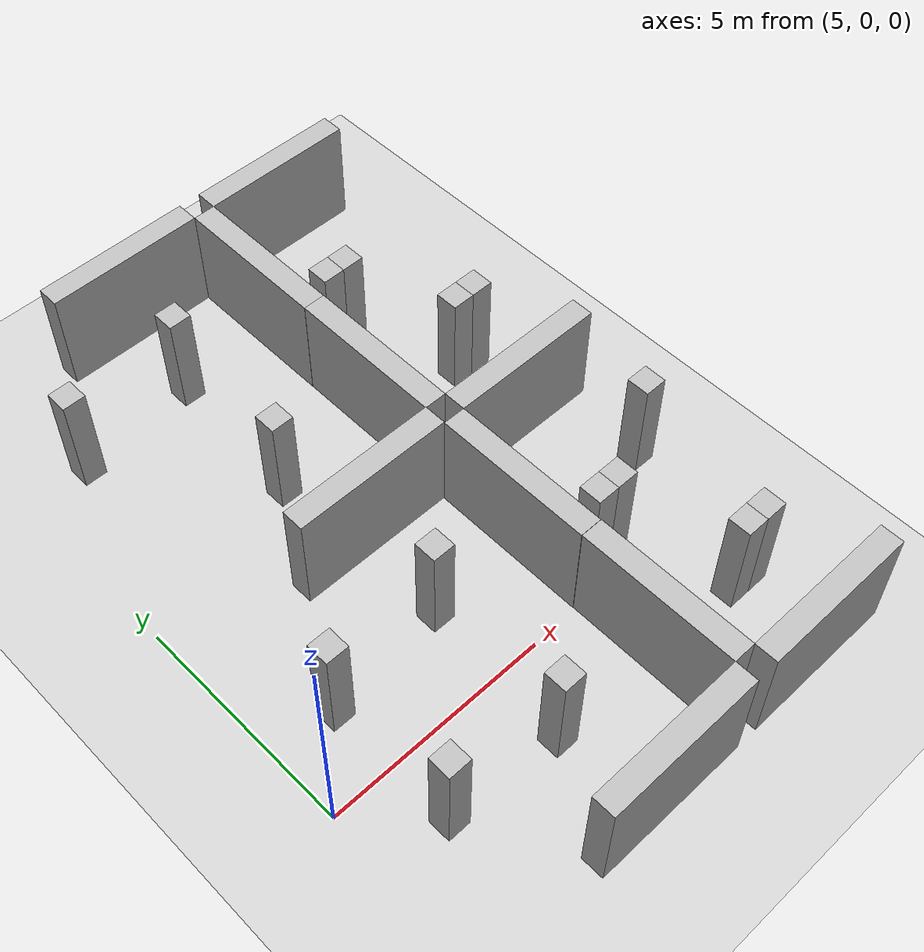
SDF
<sdf version="1.6">
 <world name="default">
  <model name="ground_plane">
   <static>1</static>
   <link name="link">
    <collision name="collision">
     <geometry><plane><normal>0 0 1</normal><size>100 100</size></plane></geometry>
     <surface><friction><ode><mu>100</mu><mu2>50</mu2></ode></friction></surface>
    </collision>
    <visual name="visual">
     <cast_shadows>0</cast_shadows>
     <geometry><plane><normal>0 0 1</normal><size>100 100</size></plane></geometry>
     <material>
      <script><uri>file://media/materials/scripts/gazebo.material</uri><name>Gazebo/Grey</name></script>
     </material>
    </visual>
   </link>
  </model>
  <model name="mywall0_4_clone_0_clone">
   <static>1</static>
   <link name="link">
    <pose>0 0 1.4 0 -0 0</pose>
    <collision name="collision"><geometry><box><size>3.5 0.5 2.4</size></box></geometry></collision>
    <visual name="visual">
     <cast_shadows>0</cast_shadows>
     <geometry><box><size>3.5 0.5 2.4</size></box></geometry>
     <material>
      <script>
       <uri>model://mywall0/materials/scripts</uri>
       <uri>model://mywall0/materials/textures</uri>
       <name>vrc/mywall0</name>
      </script>
     </material>
    </visual>
   </link>
   <pose>11.25 1.75 0 0 -0 1.57</pose>
  </model>
  <model name="mywall0_1_clone_0">
   <static>1</static>
   <link name="link">
    <pose>0 0 1.4 0 -0 0</pose>
    <collision name="collision"><geometry><box><size>3.5 0.5 2.4</size></box></geometry></collision>
    <visual name="visual">
     <cast_shadows>0</cast_shadows>
     <geometry><box><size>3.5 0.5 2.4</size></box></geometry>
     <material>
      <script>
       <uri>model://mywall0/materials/scripts</uri>
       <uri>model://mywall0/materials/textures</uri>
       <name>vrc/mywall0</name>
      </script>
     </material>
    </visual>
   </link>
   <pose>9.26518 3.76712 0 0 -0 0</pose>
  </model>
  <model name="mywall0_4_clone_0_clone_clone">
   <static>1</static>
   <link name="link">
    <pose>0 0 1.4 0 -0 0</pose>
    <collision name="collision"><geometry><box><size>3.5 0.5 2.4</size></box></geometry></collision>
    <visual name="visual">
     <cast_shadows>0</cast_shadows>
     <geometry><box><size>3.5 0.5 2.4</size></box></geometry>
     <material>
      <script>
       <uri>model://mywall0/materials/scripts</uri>
       <uri>model://mywall0/materials/textures</uri>
       <name>vrc/mywall0</name>
      </script>
     </material>
    </visual>
   </link>
   <pose>11.2541 -1.75467 0 0 -0 1.57</pose>
  </model>
  <model name="mywall0_3_clone_0">
   <static>1</static>
   <link name="link">
    <pose>0 0 1.4 0 -0 0</pose>
    <collision name="collision"><geometry><box><size>3.5 0.5 2.4</size></box></geometry></collision>
    <visual name="visual">
     <cast_shadows>0</cast_shadows>
     <geometry><box><size>3.5 0.5 2.4</size></box></geometry>
     <material>
      <script>
       <uri>model://mywall0/materials/scripts</uri>
       <uri>model://mywall0/materials/textures</uri>
       <name>vrc/mywall0</name>
      </script>
     </material>
    </visual>
   </link>
   <pose>9.25625 -3.75 0 0 -0 0</pose>
  </model>
  <model name="mywall0_1_clone_1">
   <static>1</static>
   <link name="link">
    <pose>0 0 1.4 0 -0 0</pose>
    <collision name="collision"><geometry><box><size>3.5 0.5 2.4</size></box></geometry></collision>
    <visual name="visual">
     <cast_shadows>0</cast_shadows>
     <geometry><box><size>3.5 0.5 2.4</size></box></geometry>
     <material>
      <script>
       <uri>model://mywall0/materials/scripts</uri>
       <uri>model://mywall0/materials/textures</uri>
       <name>vrc/mywall0</name>
      </script>
     </material>
    </visual>
   </link>
   <pose>13.25 3.75 0 0 -0 0</pose>
  </model>
  <model name="mywall0_1_clone_1_clone">
   <static>1</static>
   <link name="link">
    <pose>0 0 1.4 0 -0 0</pose>
    <collision name="collision"><geometry><box><size>3.5 0.5 2.4</size></box></geometry></collision>
    <visual name="visual">
     <cast_shadows>0</cast_shadows>
     <geometry><box><size>3.5 0.5 2.4</size></box></geometry>
     <material>
      <script>
       <uri>model://mywall0/materials/scripts</uri>
       <uri>model://mywall0/materials/textures</uri>
       <name>vrc/mywall0</name>
      </script>
     </material>
    </visual>
   </link>
   <pose>13.25 -3.75 0 0 -0 0</pose>
  </model>
  <model name="mywall0_4_clone_0_clone_clone_0_clone_6">
   <static>1</static>
   <link name="link">
    <pose>0 0 1.4 0 -0 0</pose>
    <collision name="collision"><geometry><box><size>3.5 0.5 2.4</size></box></geometry></collision>
    <visual name="visual">
     <cast_shadows>0</cast_shadows>
     <geometry><box><size>3.5 0.5 2.4</size></box></geometry>
     <material>
      <script>
       <uri>model://mywall0/materials/scripts</uri>
       <uri>model://mywall0/materials/textures</uri>
       <name>vrc/mywall0</name>
      </script>
     </material>
    </visual>
   </link>
   <pose>11.25 5.75 0 0 -0 1.57</pose>
  </model>
  <model name="mywall0_4_clone_0_clone_clone_0_clone_7">
   <static>1</static>
   <link name="link">
    <pose>0 0 1.4 0 -0 0</pose>
    <collision name="collision"><geometry><box><size>3.5 0.5 2.4</size></box></geometry></collision>
    <visual name="visual">
     <cast_shadows>0</cast_shadows>
     <geometry><box><size>3.5 0.5 2.4</size></box></geometry>
     <material>
      <script>
       <uri>model://mywall0/materials/scripts</uri>
       <uri>model://mywall0/materials/textures</uri>
       <name>vrc/mywall0</name>
      </script>
     </material>
    </visual>
   </link>
   <pose>11.25 9.25 0 0 -0 1.57</pose>
  </model>
  <model name="mywall0_1_clone_1_clone_3_clone_2">
   <static>1</static>
   <link name="link">
    <pose>0 0 1.4 0 -0 0</pose>
    <collision name="collision"><geometry><box><size>3.5 0.5 2.4</size></box></geometry></collision>
    <visual name="visual">
     <cast_shadows>0</cast_shadows>
     <geometry><box><size>3.5 0.5 2.4</size></box></geometry>
     <material>
      <script>
       <uri>model://mywall0/materials/scripts</uri>
       <uri>model://mywall0/materials/textures</uri>
       <name>vrc/mywall0</name>
      </script>
     </material>
    </visual>
   </link>
   <pose>13.25 11.25 0 0 -0 0</pose>
  </model>
  <model name="mywall0_1_clone_1_clone_3_clone_3">
   <static>1</static>
   <link name="link">
    <pose>0 0 1.4 0 -0 0</pose>
    <collision name="collision"><geometry><box><size>3.5 0.5 2.4</size></box></geometry></collision>
    <visual name="visual">
     <cast_shadows>0</cast_shadows>
     <geometry><box><size>3.5 0.5 2.4</size></box></geometry>
     <material>
      <script>
       <uri>model://mywall0/materials/scripts</uri>
       <uri>model://mywall0/materials/textures</uri>
       <name>vrc/mywall0</name>
      </script>
     </material>
    </visual>
   </link>
   <pose>9.25 11.25 0 0 -0 0</pose>
  </model>
  <model name="mypillar">
   <static>1</static>
   <link name="link">
    <pose>0 0 1.4 0 -0 0</pose>
    <collision name="collision"><geometry><box><size>0.5 0.5 2.4</size></box></geometry></collision>
    <visual name="visual">
     <cast_shadows>0</cast_shadows>
     <geometry><box><size>0.5 0.5 2.4</size></box></geometry>
     <material>
      <script>
       <uri>model://mypillar/materials/scripts</uri>
       <uri>model://mypillar/materials/textures</uri>
       <name>vrc/mypillar</name>
      </script>
     </material>
    </visual>
   </link>
   <pose>6.3 1.4 0 0 -0 0</pose>
  </model>
  <model name="mypillar_0">
   <static>1</static>
   <link name="link">
    <pose>0 0 1.4 0 -0 0</pose>
    <collision name="collision"><geometry><box><size>0.5 0.5 2.4</size></box></geometry></collision>
    <visual name="visual">
     <cast_shadows>0</cast_shadows>
     <geometry><box><size>0.5 0.5 2.4</size></box></geometry>
     <material>
      <script>
       <uri>model://mypillar/materials/scripts</uri>
       <uri>model://mypillar/materials/textures</uri>
       <name>vrc/mypillar</name>
      </script>
     </material>
    </visual>
   </link>
   <pose>8.8 -1.7 0 0 -0 0</pose>
  </model>
  <model name="mypillar_1">
   <static>1</static>
   <link name="link">
    <pose>0 0 1.4 0 -0 0</pose>
    <collision name="collision"><geometry><box><size>0.5 0.5 2.4</size></box></geometry></collision>
    <visual name="visual">
     <cast_shadows>0</cast_shadows>
     <geometry><box><size>0.5 0.5 2.4</size></box></geometry>
     <material>
      <script>
       <uri>model://mypillar/materials/scripts</uri>
       <uri>model://mypillar/materials/textures</uri>
       <name>vrc/mypillar</name>
      </script>
     </material>
    </visual>
   </link>
   <pose>9 1.65 0 0 -0 0</pose>
  </model>
  <model name="mypillar_clone">
   <static>1</static>
   <link name="link">
    <pose>0 0 1.4 0 -0 0</pose>
    <collision name="collision"><geometry><box><size>0.5 0.5 2.4</size></box></geometry></collision>
    <visual name="visual">
     <cast_shadows>0</cast_shadows>
     <geometry><box><size>0.5 0.5 2.4</size></box></geometry>
     <material>
      <script>
       <uri>model://mypillar/materials/scripts</uri>
       <uri>model://mypillar/materials/textures</uri>
       <name>vrc/mypillar</name>
      </script>
     </material>
    </visual>
   </link>
   <pose>6.35 -1.5 0 0 -0 0</pose>
  </model>
  <model name="mypillar_1_clone_clone_1">
   <static>1</static>
   <link name="link">
    <pose>0 0 1.4 0 -0 0</pose>
    <collision name="collision"><geometry><box><size>0.5 0.5 2.4</size></box></geometry></collision>
    <visual name="visual">
     <cast_shadows>0</cast_shadows>
     <geometry><box><size>0.5 0.5 2.4</size></box></geometry>
     <material>
      <script>
       <uri>model://mypillar/materials/scripts</uri>
       <uri>model://mypillar/materials/textures</uri>
       <name>vrc/mypillar</name>
      </script>
     </material>
    </visual>
   </link>
   <pose>14.5 1.6 0 0 -0 0</pose>
  </model>
  <model name="mypillar_1_clone_clone_2">
   <static>1</static>
   <link name="link">
    <pose>0 0 1.4 0 -0 0</pose>
    <collision name="collision"><geometry><box><size>0.5 0.5 2.4</size></box></geometry></collision>
    <visual name="visual">
     <cast_shadows>0</cast_shadows>
     <geometry><box><size>0.5 0.5 2.4</size></box></geometry>
     <material>
      <script>
       <uri>model://mypillar/materials/scripts</uri>
       <uri>model://mypillar/materials/textures</uri>
       <name>vrc/mypillar</name>
      </script>
     </material>
    </visual>
   </link>
   <pose>13.4 -1.8 0 0 -0 0</pose>
  </model>
  <model name="mypillar_1_clone_clone_3">
   <static>1</static>
   <link name="link">
    <pose>0 0 1.4 0 -0 0</pose>
    <collision name="collision"><geometry><box><size>0.5 0.5 2.4</size></box></geometry></collision>
    <visual name="visual">
     <cast_shadows>0</cast_shadows>
     <geometry><box><size>0.5 0.5 2.4</size></box></geometry>
     <material>
      <script>
       <uri>model://mypillar/materials/scripts</uri>
       <uri>model://mypillar/materials/textures</uri>
       <name>vrc/mypillar</name>
      </script>
     </material>
    </visual>
   </link>
   <pose>13.9 -1.8 0 0 -0 0</pose>
  </model>
  <model name="mypillar_1_clone_clone_4_clone_2">
   <static>1</static>
   <link name="link">
    <pose>0 0 1.4 0 -0 0</pose>
    <collision name="collision"><geometry><box><size>0.5 0.5 2.4</size></box></geometry></collision>
    <visual name="visual">
     <cast_shadows>0</cast_shadows>
     <geometry><box><size>0.5 0.5 2.4</size></box></geometry>
     <material>
      <script>
       <uri>model://mypillar/materials/scripts</uri>
       <uri>model://mypillar/materials/textures</uri>
       <name>vrc/mypillar</name>
      </script>
     </material>
    </visual>
   </link>
   <pose>12 0.5 0 0 -0 0</pose>
  </model>
  <model name="mypillar_1_clone_clone_4_clone_3">
   <static>1</static>
   <link name="link">
    <pose>0 0 1.4 0 -0 0</pose>
    <collision name="collision"><geometry><box><size>0.5 0.5 2.4</size></box></geometry></collision>
    <visual name="visual">
     <cast_shadows>0</cast_shadows>
     <geometry><box><size>0.5 0.5 2.4</size></box></geometry>
     <material>
      <script>
       <uri>model://mypillar/materials/scripts</uri>
       <uri>model://mypillar/materials/textures</uri>
       <name>vrc/mypillar</name>
      </script>
     </material>
    </visual>
   </link>
   <pose>12.5 0.5 0 0 -0 0</pose>
  </model>
  <model name="mypillar_clone_0_clone_1_clone">
   <static>1</static>
   <link name="link">
    <pose>0 0 1.4 0 -0 0</pose>
    <collision name="collision"><geometry><box><size>0.5 0.5 2.4</size></box></geometry></collision>
    <visual name="visual">
     <cast_shadows>0</cast_shadows>
     <geometry><box><size>0.5 0.5 2.4</size></box></geometry>
     <material>
      <script>
       <uri>model://mypillar/materials/scripts</uri>
       <uri>model://mypillar/materials/textures</uri>
       <name>vrc/mypillar</name>
      </script>
     </material>
    </visual>
   </link>
   <pose>6.3 8.9 0 0 -0 0</pose>
  </model>
  <model name="mypillar_clone_0_clone_1_clone_1">
   <static>1</static>
   <link name="link">
    <pose>0 0 1.4 0 -0 0</pose>
    <collision name="collision"><geometry><box><size>0.5 0.5 2.4</size></box></geometry></collision>
    <visual name="visual">
     <cast_shadows>0</cast_shadows>
     <geometry><box><size>0.5 0.5 2.4</size></box></geometry>
     <material>
      <script>
       <uri>model://mypillar/materials/scripts</uri>
       <uri>model://mypillar/materials/textures</uri>
       <name>vrc/mypillar</name>
      </script>
     </material>
    </visual>
   </link>
   <pose>9 9.15 0 0 -0 0</pose>
  </model>
  <model name="mypillar_clone_0_clone_1_clone_2">
   <static>1</static>
   <link name="link">
    <pose>0 0 1.4 0 -0 0</pose>
    <collision name="collision"><geometry><box><size>0.5 0.5 2.4</size></box></geometry></collision>
    <visual name="visual">
     <cast_shadows>0</cast_shadows>
     <geometry><box><size>0.5 0.5 2.4</size></box></geometry>
     <material>
      <script>
       <uri>model://mypillar/materials/scripts</uri>
       <uri>model://mypillar/materials/textures</uri>
       <name>vrc/mypillar</name>
      </script>
     </material>
    </visual>
   </link>
   <pose>8.8 5.8 0 0 -0 0</pose>
  </model>
  <model name="mypillar_1_clone_clone_4_clone_2_clone">
   <static>1</static>
   <link name="link">
    <pose>0 0 1.4 0 -0 0</pose>
    <collision name="collision"><geometry><box><size>0.5 0.5 2.4</size></box></geometry></collision>
    <visual name="visual">
     <cast_shadows>0</cast_shadows>
     <geometry><box><size>0.5 0.5 2.4</size></box></geometry>
     <material>
      <script>
       <uri>model://mypillar/materials/scripts</uri>
       <uri>model://mypillar/materials/textures</uri>
       <name>vrc/mypillar</name>
      </script>
     </material>
    </visual>
   </link>
   <pose>12 8 0 0 -0 0</pose>
  </model>
  <model name="mypillar_1_clone_clone_4_clone_2_clone_0">
   <static>1</static>
   <link name="link">
    <pose>0 0 1.4 0 -0 0</pose>
    <collision name="collision"><geometry><box><size>0.5 0.5 2.4</size></box></geometry></collision>
    <visual name="visual">
     <cast_shadows>0</cast_shadows>
     <geometry><box><size>0.5 0.5 2.4</size></box></geometry>
     <material>
      <script>
       <uri>model://mypillar/materials/scripts</uri>
       <uri>model://mypillar/materials/textures</uri>
       <name>vrc/mypillar</name>
      </script>
     </material>
    </visual>
   </link>
   <pose>12.5 8 0 0 -0 0</pose>
  </model>
  <model name="mypillar_1_clone_clone_4_clone_2_clone_4">
   <static>1</static>
   <link name="link">
    <pose>0 0 1.4 0 -0 0</pose>
    <collision name="collision"><geometry><box><size>0.5 0.5 2.4</size></box></geometry></collision>
    <visual name="visual">
     <cast_shadows>0</cast_shadows>
     <geometry><box><size>0.5 0.5 2.4</size></box></geometry>
     <material>
      <script>
       <uri>model://mypillar/materials/scripts</uri>
       <uri>model://mypillar/materials/textures</uri>
       <name>vrc/mypillar</name>
      </script>
     </material>
    </visual>
   </link>
   <pose>13.4 5.7 0 0 -0 0</pose>
  </model>
  <model name="mypillar_1_clone_clone_4_clone_2_clone_5">
   <static>1</static>
   <link name="link">
    <pose>0 0 1.4 0 -0 0</pose>
    <collision name="collision"><geometry><box><size>0.5 0.5 2.4</size></box></geometry></collision>
    <visual name="visual">
     <cast_shadows>0</cast_shadows>
     <geometry><box><size>0.5 0.5 2.4</size></box></geometry>
     <material>
      <script>
       <uri>model://mypillar/materials/scripts</uri>
       <uri>model://mypillar/materials/textures</uri>
       <name>vrc/mypillar</name>
      </script>
     </material>
    </visual>
   </link>
   <pose>13.9 5.7 0 0 -0 0</pose>
  </model>
 </world>
</sdf>
